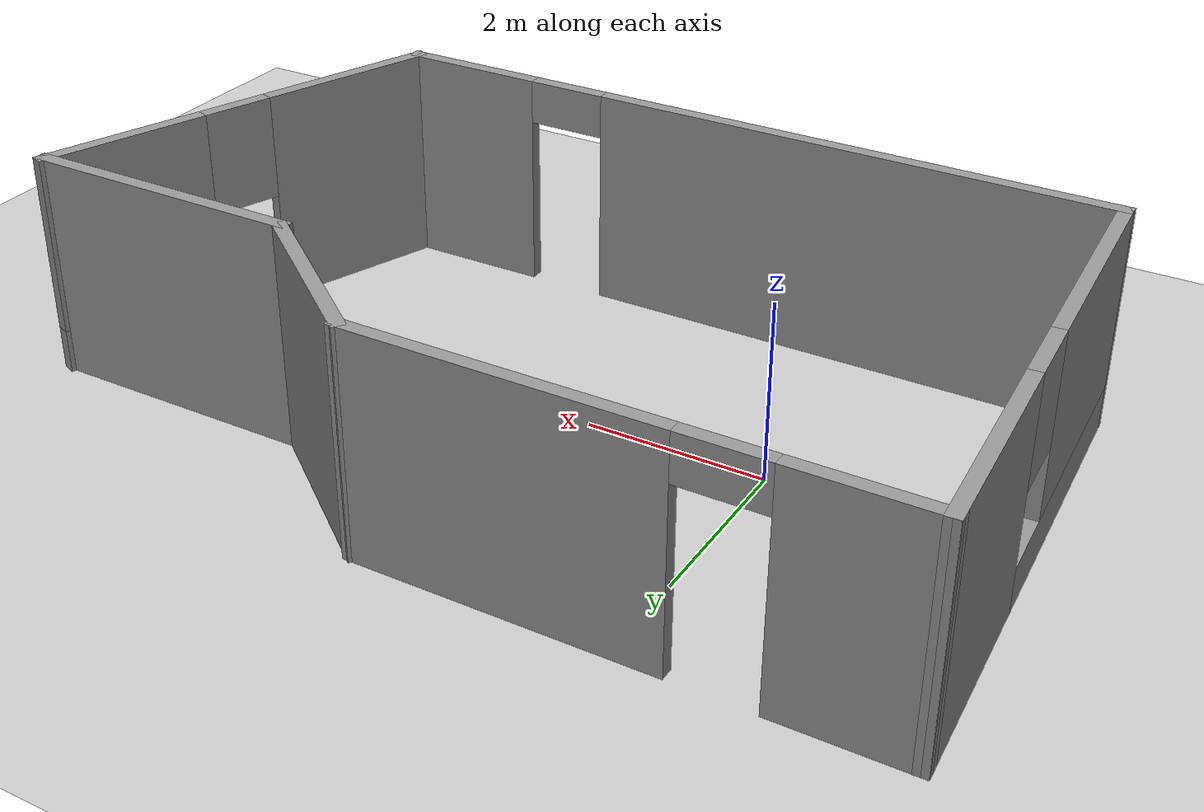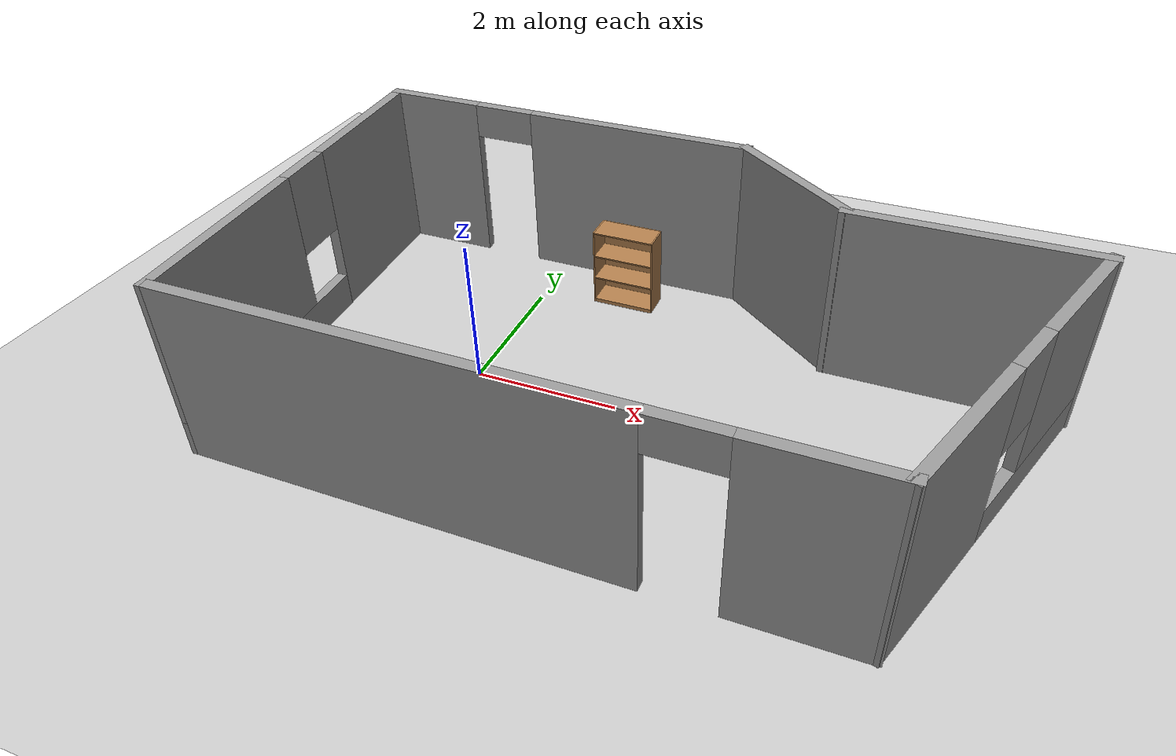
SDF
<sdf version="1.7">
 <world name="default">
  <model name="ground_plane">
   <static>1</static>
   <link name="link">
    <collision name="collision">
     <geometry><plane><normal>0 0 1</normal><size>100 100</size></plane></geometry>
     <surface>
      <contact><collide_bitmask>65535</collide_bitmask></contact>
      <friction><ode><mu>100</mu><mu2>50</mu2></ode></friction>
     </surface>
    </collision>
    <visual name="visual">
     <cast_shadows>0</cast_shadows>
     <geometry><plane><normal>0 0 1</normal><size>100 100</size></plane></geometry>
     <material>
      <script><uri>file://media/materials/scripts/gazebo.material</uri><name>Gazebo/Grey</name></script>
     </material>
    </visual>
   </link>
  </model>
  <model name="test_world">
   <pose>2.32044 0.242941 0 0 -0 0</pose>
   <link name="Wall_2">
    <pose>-0.644671 -2.85452 0 0 -0 0</pose>
    <visual name="Wall_2_Visual_0">
     <pose>-1.29073 0 1.25 0 -0 0</pose>
     <geometry><box><size>5.91854 0.15 2.5</size></box></geometry>
     <material>
      <script><uri>file://media/materials/scripts/gazebo.material</uri><name>Gazebo/Grey</name></script>
      <ambient>1 1 1 1</ambient>
     </material>
     <meta><layer>0</layer></meta>
    </visual>
    <collision name="Wall_2_Collision_0">
     <geometry><box><size>5.91854 0.15 2.5</size></box></geometry>
     <pose>-1.29073 0 1.25 0 -0 0</pose>
    </collision>
    <visual name="Wall_2_Visual_1">
     <pose>3.40927 0 1.25 0 -0 0</pose>
     <geometry><box><size>1.68146 0.15 2.5</size></box></geometry>
     <material>
      <script><uri>file://media/materials/scripts/gazebo.material</uri><name>Gazebo/Grey</name></script>
      <ambient>1 1 1 1</ambient>
     </material>
     <meta><layer>0</layer></meta>
    </visual>
    <collision name="Wall_2_Collision_1">
     <geometry><box><size>1.68146 0.15 2.5</size></box></geometry>
     <pose>3.40927 0 1.25 0 -0 0</pose>
    </collision>
    <visual name="Wall_2_Visual_2">
     <pose>2.11854 0 2.25 0 -0 0</pose>
     <geometry><box><size>0.9 0.15 0.5</size></box></geometry>
     <material>
      <script><uri>file://media/materials/scripts/gazebo.material</uri><name>Gazebo/Grey</name></script>
      <ambient>1 1 1 1</ambient>
     </material>
     <meta><layer>0</layer></meta>
    </visual>
    <collision name="Wall_2_Collision_2">
     <geometry><box><size>0.9 0.15 0.5</size></box></geometry>
     <pose>2.11854 0 2.25 0 -0 0</pose>
    </collision>
   </link>
   <link name="Wall_3">
    <pose>4.34164 -0.63422 0 0 -0 1.22047</pose>
    <visual name="Wall_3_Visual_0">
     <pose>-1.36792 0 1.25 0 -0 0</pose>
     <geometry><box><size>2.14193 0.15 2.5</size></box></geometry>
     <material>
      <script><uri>file://media/materials/scripts/gazebo.material</uri><name>Gazebo/Grey</name></script>
      <ambient>1 1 1 1</ambient>
     </material>
     <meta><layer>0</layer></meta>
    </visual>
    <collision name="Wall_3_Collision_0">
     <geometry><box><size>2.14193 0.15 2.5</size></box></geometry>
     <pose>-1.36792 0 1.25 0 -0 0</pose>
    </collision>
    <visual name="Wall_3_Visual_1">
     <pose>1.07097 0 0.25 0 -0 0</pose>
     <geometry><box><size>2.73584 0.15 0.5</size></box></geometry>
     <material>
      <script><uri>file://media/materials/scripts/gazebo.material</uri><name>Gazebo/Grey</name></script>
      <ambient>1 1 1 1</ambient>
     </material>
     <meta><layer>0</layer></meta>
    </visual>
    <collision name="Wall_3_Collision_1">
     <geometry><box><size>2.73584 0.15 0.5</size></box></geometry>
     <pose>1.07097 0 0.25 0 -0 0</pose>
    </collision>
    <visual name="Wall_3_Visual_2">
     <pose>1.47097 0 1.5 0 -0 0</pose>
     <geometry><box><size>1.93584 0.15 2</size></box></geometry>
     <material>
      <script><uri>file://media/materials/scripts/gazebo.material</uri><name>Gazebo/Grey</name></script>
      <ambient>1 1 1 1</ambient>
     </material>
     <meta><layer>0</layer></meta>
    </visual>
    <collision name="Wall_3_Collision_2">
     <geometry><box><size>1.93584 0.15 2</size></box></geometry>
     <pose>1.47097 0 1.5 0 -0 0</pose>
    </collision>
    <visual name="Wall_3_Visual_3">
     <pose>0.103044 0 1.9 0 -0 0</pose>
     <geometry><box><size>0.8 0.15 1.2</size></box></geometry>
     <material>
      <script><uri>file://media/materials/scripts/gazebo.material</uri><name>Gazebo/Grey</name></script>
      <ambient>1 1 1 1</ambient>
     </material>
     <meta><layer>0</layer></meta>
    </visual>
    <collision name="Wall_3_Collision_3">
     <geometry><box><size>0.8 0.15 1.2</size></box></geometry>
     <pose>0.103044 0 1.9 0 -0 0</pose>
    </collision>
   </link>
   <link name="Wall_4">
    <collision name="Wall_4_Collision">
     <geometry><box><size>3.25 0.15 2.5</size></box></geometry>
     <pose>0 0 1.25 0 -0 0</pose>
    </collision>
    <visual name="Wall_4_Visual">
     <pose>0 0 1.25 0 -0 0</pose>
     <geometry><box><size>3.25 0.15 2.5</size></box></geometry>
     <material>
      <script><uri>file://media/materials/scripts/gazebo.material</uri><name>Gazebo/Grey</name></script>
      <ambient>1 1 1 1</ambient>
     </material>
     <meta><layer>0</layer></meta>
    </visual>
    <pose>3.60294 1.55948 0 0 -0 3.14159</pose>
   </link>
   <link name="Wall_5">
    <collision name="Wall_5_Collision">
     <geometry><box><size>2.204 0.15 2.5</size></box></geometry>
     <pose>0 0 1.25 0 -0 0</pose>
    </collision>
    <visual name="Wall_5_Visual">
     <pose>0 0 1.25 0 -0 0</pose>
     <geometry><box><size>2.204 0.15 2.5</size></box></geometry>
     <material>
      <script><uri>file://media/materials/scripts/gazebo.material</uri><name>Gazebo/Grey</name></script>
      <ambient>1 1 1 1</ambient>
     </material>
     <meta><layer>0</layer></meta>
    </visual>
    <pose>1.24164 2.21578 0 0 -0 2.48156</pose>
   </link>
   <link name="Wall_6">
    <pose>-2.36967 2.84548 0 0 -0 3.14159</pose>
    <visual name="Wall_6_Visual_0">
     <pose>-1.19025 0 1.25 0 -0 0</pose>
     <geometry><box><size>3.36949 0.15 2.5</size></box></geometry>
     <material>
      <script><uri>file://media/materials/scripts/gazebo.material</uri><name>Gazebo/Grey</name></script>
      <ambient>1 1 1 1</ambient>
     </material>
     <meta><layer>0</layer></meta>
    </visual>
    <collision name="Wall_6_Collision_0">
     <geometry><box><size>3.36949 0.15 2.5</size></box></geometry>
     <pose>-1.19025 0 1.25 0 -0 0</pose>
    </collision>
    <visual name="Wall_6_Visual_1">
     <pose>2.13475 0 1.25 0 -0 0</pose>
     <geometry><box><size>1.48051 0.15 2.5</size></box></geometry>
     <material>
      <script><uri>file://media/materials/scripts/gazebo.material</uri><name>Gazebo/Grey</name></script>
      <ambient>1 1 1 1</ambient>
     </material>
     <meta><layer>0</layer></meta>
    </visual>
    <collision name="Wall_6_Collision_1">
     <geometry><box><size>1.48051 0.15 2.5</size></box></geometry>
     <pose>2.13475 0 1.25 0 -0 0</pose>
    </collision>
    <visual name="Wall_6_Visual_2">
     <pose>0.944494 0 2.25 0 -0 0</pose>
     <geometry><box><size>0.9 0.15 0.5</size></box></geometry>
     <material>
      <script><uri>file://media/materials/scripts/gazebo.material</uri><name>Gazebo/Grey</name></script>
      <ambient>1 1 1 1</ambient>
     </material>
     <meta><layer>0</layer></meta>
    </visual>
    <collision name="Wall_6_Collision_2">
     <geometry><box><size>0.9 0.15 0.5</size></box></geometry>
     <pose>0.944494 0 2.25 0 -0 0</pose>
    </collision>
   </link>
   <link name="Wall_7">
    <pose>-4.99467 -0.004524 0 0 -0 -1.50947</pose>
    <visual name="Wall_7_Visual_0">
     <pose>-1.759 0 1.25 0 -0 0</pose>
     <geometry><box><size>2.34273 0.15 2.5</size></box></geometry>
     <material>
      <script><uri>file://media/materials/scripts/gazebo.material</uri><name>Gazebo/Grey</name></script>
      <ambient>1 1 1 1</ambient>
     </material>
     <meta><layer>0</layer></meta>
    </visual>
    <collision name="Wall_7_Collision_0">
     <geometry><box><size>2.34273 0.15 2.5</size></box></geometry>
     <pose>-1.759 0 1.25 0 -0 0</pose>
    </collision>
    <visual name="Wall_7_Visual_1">
     <pose>1.17136 0 0.25 0 -0 0</pose>
     <geometry><box><size>3.51801 0.15 0.5</size></box></geometry>
     <material>
      <script><uri>file://media/materials/scripts/gazebo.material</uri><name>Gazebo/Grey</name></script>
      <ambient>1 1 1 1</ambient>
     </material>
     <meta><layer>0</layer></meta>
    </visual>
    <collision name="Wall_7_Collision_1">
     <geometry><box><size>3.51801 0.15 0.5</size></box></geometry>
     <pose>1.17136 0 0.25 0 -0 0</pose>
    </collision>
    <visual name="Wall_7_Visual_2">
     <pose>1.57136 0 1.5 0 -0 0</pose>
     <geometry><box><size>2.71801 0.15 2</size></box></geometry>
     <material>
      <script><uri>file://media/materials/scripts/gazebo.material</uri><name>Gazebo/Grey</name></script>
      <ambient>1 1 1 1</ambient>
     </material>
     <meta><layer>0</layer></meta>
    </visual>
    <collision name="Wall_7_Collision_2">
     <geometry><box><size>2.71801 0.15 2</size></box></geometry>
     <pose>1.57136 0 1.5 0 -0 0</pose>
    </collision>
    <visual name="Wall_7_Visual_3">
     <pose>-0.187642 0 1.9 0 -0 0</pose>
     <geometry><box><size>0.8 0.15 1.2</size></box></geometry>
     <material>
      <script><uri>file://media/materials/scripts/gazebo.material</uri><name>Gazebo/Grey</name></script>
      <ambient>1 1 1 1</ambient>
     </material>
     <meta><layer>0</layer></meta>
    </visual>
    <collision name="Wall_7_Collision_3">
     <geometry><box><size>0.8 0.15 1.2</size></box></geometry>
     <pose>-0.187642 0 1.9 0 -0 0</pose>
    </collision>
   </link>
   <static>1</static>
  </model>
  <model name="bookshelf">
   <static>1</static>
   <link name="link">
    <inertial><mass>1</mass></inertial>
    <collision name="back">
     <pose>0 0.005 0.6 0 -0 0</pose>
     <geometry><box><size>0.9 0.01 1.2</size></box></geometry>
    </collision>
    <visual name="visual1">
     <pose>0 0.005 0.6 0 -0 0</pose>
     <geometry><box><size>0.9 0.01 1.2</size></box></geometry>
     <material>
      <script><uri>file://media/materials/scripts/gazebo.material</uri><name>Gazebo/Wood</name></script>
     </material>
    </visual>
    <collision name="left_side">
     <pose>0.45 -0.195 0.6 0 -0 0</pose>
     <geometry><box><size>0.02 0.4 1.2</size></box></geometry>
    </collision>
    <visual name="visual2">
     <pose>0.45 -0.195 0.6 0 -0 0</pose>
     <geometry><box><size>0.02 0.4 1.2</size></box></geometry>
     <material>
      <script><uri>file://media/materials/scripts/gazebo.material</uri><name>Gazebo/Wood</name></script>
     </material>
    </visual>
    <collision name="right_side">
     <pose>-0.45 -0.195 0.6 0 -0 0</pose>
     <geometry><box><size>0.02 0.4 1.2</size></box></geometry>
    </collision>
    <visual name="visual3">
     <pose>-0.45 -0.195 0.6 0 -0 0</pose>
     <geometry><box><size>0.02 0.4 1.2</size></box></geometry>
     <material>
      <script><uri>file://media/materials/scripts/gazebo.material</uri><name>Gazebo/Wood</name></script>
     </material>
    </visual>
    <collision name="bottom">
     <pose>0 -0.195 0.03 0 -0 0</pose>
     <geometry><box><size>0.88 0.4 0.06</size></box></geometry>
    </collision>
    <visual name="visual4">
     <pose>0 -0.195 0.03 0 -0 0</pose>
     <geometry><box><size>0.88 0.4 0.06</size></box></geometry>
     <material>
      <script><uri>file://media/materials/scripts/gazebo.material</uri><name>Gazebo/Wood</name></script>
     </material>
    </visual>
    <collision name="top">
     <pose>0 -0.195 1.19 0 -0 0</pose>
     <geometry><box><size>0.88 0.4 0.02</size></box></geometry>
    </collision>
    <visual name="visual5">
     <pose>0 -0.195 1.19 0 -0 0</pose>
     <geometry><box><size>0.88 0.4 0.02</size></box></geometry>
     <material>
      <script><uri>file://media/materials/scripts/gazebo.material</uri><name>Gazebo/Wood</name></script>
     </material>
    </visual>
    <collision name="low_shelf">
     <pose>0 -0.195 0.43 0 -0 0</pose>
     <geometry><box><size>0.88 0.4 0.02</size></box></geometry>
    </collision>
    <visual name="visual6">
     <pose>0 -0.195 0.43 0 -0 0</pose>
     <geometry><box><size>0.88 0.4 0.02</size></box></geometry>
     <material>
      <script><uri>file://media/materials/scripts/gazebo.material</uri><name>Gazebo/Wood</name></script>
     </material>
    </visual>
    <collision name="high_shelf">
     <pose>0 -0.195 0.8 0 -0 0</pose>
     <geometry><box><size>0.88 0.4 0.02</size></box></geometry>
    </collision>
    <visual name="visual7">
     <pose>0 -0.195 0.8 0 -0 0</pose>
     <geometry><box><size>0.88 0.4 0.02</size></box></geometry>
     <material>
      <script><uri>file://media/materials/scripts/gazebo.material</uri><name>Gazebo/Wood</name></script>
     </material>
    </visual>
   </link>
   <pose>1.24033 2.59461 0 0 -0 0</pose>
  </model>
 </world>
</sdf>
